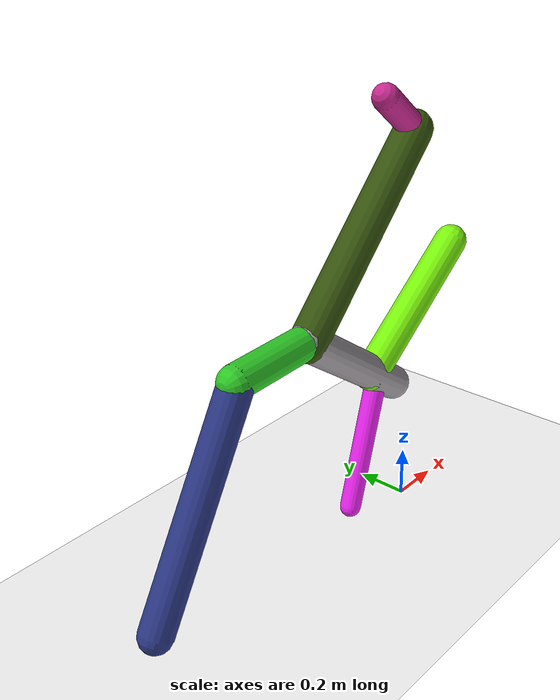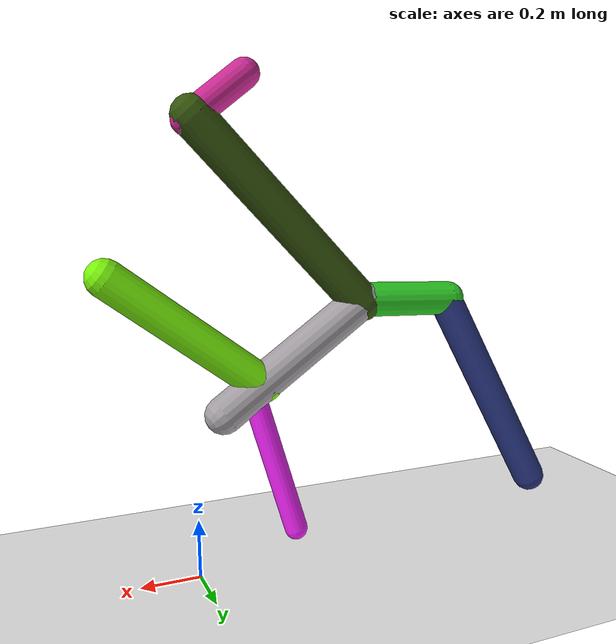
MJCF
<mujoco model="morphology">
  <option timestep="0.01"/>
  <default>
    <default class="/"/>
  </default>
  <asset>
    <texture name="texplane" type="2d" builtin="checker" rgb1="0.1 0.2 0.3" rgb2="0.2 0.3 0.4" width="300" height="300"/>
    <material name="MatPlane" class="/" texture="texplane" texrepeat="20 20" specular="1" shininess="1" reflectance="0.5"/>
  </asset>
  <worldbody>
    <light name="//unnamed_light_0" class="/" directional="true" pos="0 0 1.5" dir="0 0 -1.3" cutoff="1e+02" exponent="1" diffuse="1 1 1" specular="0.1 0.1 0.1"/>
    <geom name="ground" class="/" type="plane" size="15 15 0.5" material="MatPlane" rgba="1 1 1 1"/>
    <body name="body" pos="0 0 1.5">
      <geom name="geom0" class="/" type="capsule" contype="1" conaffinity="1" condim="3" size="0.049" rgba="0.79 0.16 0.57 1" friction="0.4 0.1 0.1" fromto="0 0 0 -0.19 0 0.15"/>
      <body name="body1" pos="-0.018 0 0.014">
        <geom name="geom1" class="/" type="capsule" contype="1" conaffinity="1" condim="3" size="0.068" rgba="0.21 0.33 0.054 1" friction="0.4 0.1 0.1" fromto="0 0 0 -0.58 0 -0.61"/>
        <body name="body2" pos="-0.58 0 -0.6">
          <geom name="geom2" class="/" type="capsule" contype="1" conaffinity="1" condim="3" size="0.061" rgba="0.18 0.79 0.15 1" friction="0.4 0.1 0.1" fromto="0 0 0 -0.35 0 -0.012"/>
          <body name="body3" pos="-0.34 0 -0.012">
            <geom name="geom3" class="/" type="capsule" contype="1" conaffinity="1" condim="3" size="0.061" rgba="0.17 0.22 0.53 1" friction="0.4 0.1 0.1" fromto="0 0 0 -0.41 0 -0.74"/>
          </body>
          <body name="body4" pos="-0.0076 0 -0.00027">
            <geom name="geom4" class="/" type="capsule" contype="1" conaffinity="1" condim="3" size="0.065" rgba="0.64 0.62 0.64 1" friction="0.4 0.1 0.1" fromto="0 0 0 0.51 0 -0.36"/>
            <body name="body5" pos="0.37 0 -0.27">
              <geom name="geom5" class="/" type="capsule" contype="1" conaffinity="1" condim="3" size="0.062" rgba="0.48 0.96 0.043 1" friction="0.4 0.1 0.1" fromto="0 0 0 0.5 0 0.38"/>
              <joint name="joint5" class="/" type="hinge" axis="0 1 0" limited="true" stiffness="20" range="-43 43" armature="0.1" damping="2"/>
            </body>
            <body name="body6" pos="0.41 0 -0.29">
              <geom name="geom6" class="/" type="capsule" contype="1" conaffinity="1" condim="3" size="0.04" rgba="0.97 0.15 0.99 1" friction="0.4 0.1 0.1" fromto="0 0 0 -0.15 0 -0.51"/>
              <joint name="joint6" class="/" type="hinge" axis="0 1 0" limited="true" stiffness="20" range="-36 36" armature="0.1" damping="2"/>
            </body>
            <joint name="joint4" class="/" type="hinge" axis="0 1 0" limited="true" stiffness="20" range="-70 70" armature="0.1" damping="2"/>
          </body>
        </body>
        <joint name="joint1" class="/" type="hinge" axis="0 1 0" limited="true" stiffness="20" range="-37 37" armature="0.1" damping="2"/>
      </body>
      <joint name="rootx" class="/" type="slide" axis="1 0 0" limited="false" stiffness="0" armature="0" damping="0"/>
      <joint name="rootz" class="/" type="slide" axis="0 0 1" limited="false" stiffness="0" armature="0" damping="0"/>
      <joint name="rooty" class="/" type="hinge" axis="0 1 0" limited="false" stiffness="0" armature="0" damping="0"/>
    </body>
  </worldbody>
  <actuator>
    <motor name="motor5" class="/" ctrllimited="true" ctrlrange="-1 1" gear="1.3e+02" joint="joint5"/>
    <motor name="motor6" class="/" ctrllimited="true" ctrlrange="-1 1" gear="2e+02" joint="joint6"/>
    <motor name="motor4" class="/" ctrllimited="true" ctrlrange="-1 1" gear="1.7e+02" joint="joint4"/>
    <motor name="motor1" class="/" ctrllimited="true" ctrlrange="-1 1" gear="1.3e+02" joint="joint1"/>
  </actuator>
  <sensor>
    <subtreelinvel name="velocity" body="body"/>
  </sensor>
</mujoco>
